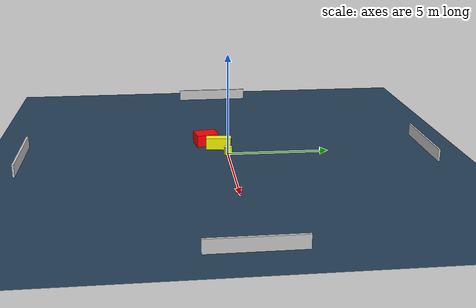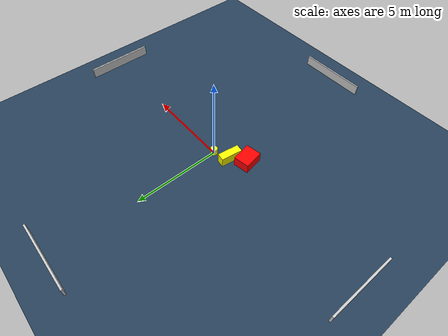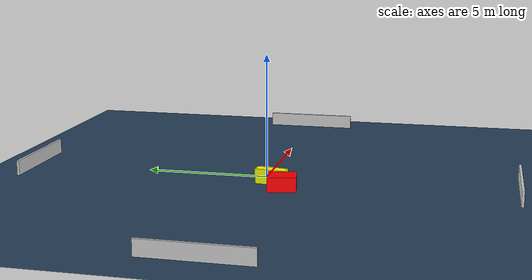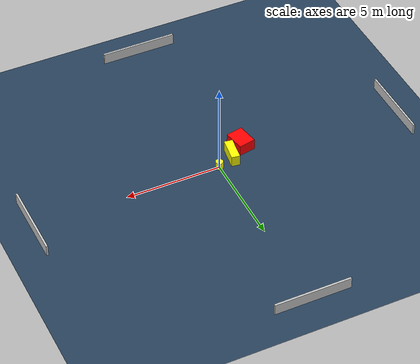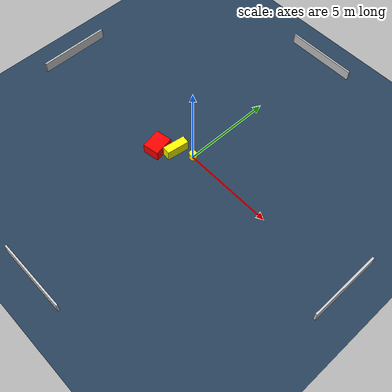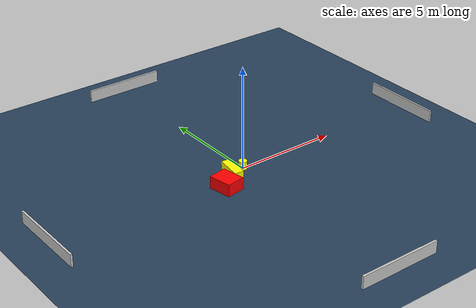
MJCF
<?xml version="1.0" ?>
<mujoco model="generated_environment">
  <option timestep="0.01" integrator="RK4" cone="elliptic"/>
  <default>
    <geom density="1"/>
  </default>
  <asset>
    <texture builtin="gradient" height="3072" name="skybox" rgb1="0.3 0.5 0.7" rgb2="0 0 0" type="skybox" width="512"/>
    <texture builtin="checker" height="300" name="groundplane" rgb1="0.2 0.3 0.4" rgb2="0.1 0.2 0.3" type="2d" width="300"/>
    <material name="groundplane" reflectance="0.2" texrepeat="5 5" texture="groundplane"/>
  </asset>
  <worldbody>
    <light dir="0 0 -1" directional="true" pos="0 0 1.5"/>
    <geom condim="3" friction="0.5 0.005 0.001" material="groundplane" name="floor" pos="0 0 0" size="0 0 0.05" type="plane"/>
    <body name="walls">
      <geom name="wall_1" condim="4" pos="-10.0 0.0 0.3" rgba="0.800000011920929 0.800000011920929 0.800000011920929 1.0" size="0.05 2.0 0.3" type="box"/>
      <geom name="wall_2" condim="4" pos="10.0 0.0 0.3" rgba="0.800000011920929 0.800000011920929 0.800000011920929 1.0" size="0.05 2.0 0.3" type="box"/>
      <geom name="wall_3" condim="4" pos="0.0 -10.0 0.3" rgba="0.800000011920929 0.800000011920929 0.800000011920929 1.0" size="2.0 0.05 0.3" type="box"/>
      <geom name="wall_4" condim="4" pos="0.0 10.0 0.3" rgba="0.800000011920929 0.800000011920929 0.800000011920929 1.0" size="2.0 0.05 0.3" type="box"/>
    </body>
    <body name="robot">
      <joint name="joint_x" type="slide" pos="0 0 0" axis="1 0 0"/>
      <joint name="joint_y" type="slide" pos="0 0 0" axis="0 1 0"/>
      <geom name="robot" type="cylinder" pos="0.0 0.0 0.2" size="0.2 0.2 0.0" mass="5.0" friction="1.0 0.005 0.0001" condim="4" rgba="1.0 1.0 0.0 1.0"/>
    </body>
    <body name="obstacle_1_movable">
      <geom name="obstacle_1_movable" condim="4" pos="-0.8854441547384825 -0.3851395532558603 0.3" euler="0 0 351.9606350867752" friction="0.0 0.005 0.001" rgba="1.0 1.0 0.0 1.0" size="0.2226831859227959 0.6226526019142975 0.3" type="box" mass="0.1"/>
      <joint type="free"/>
    </body>
    <body name="obstacle_2_static">
      <geom name="obstacle_2_static" condim="4" pos="-1.6561592319007603 -0.9712640122008424 0.3" euler="0 0 10.209258727234811" friction="0.0 0.005 0.001" rgba="1.0 0.0 0.0 1.0" size="0.4506378047815485 0.5637079773000532 0.3" type="box"/>
    </body>
  </worldbody>
  <actuator>
    <motor name="actuator_x" joint="joint_x" gear="1" ctrlrange="-1 1"/>
    <motor name="actuator_y" joint="joint_y" gear="1" ctrlrange="-1 1"/>
  </actuator>
</mujoco>
